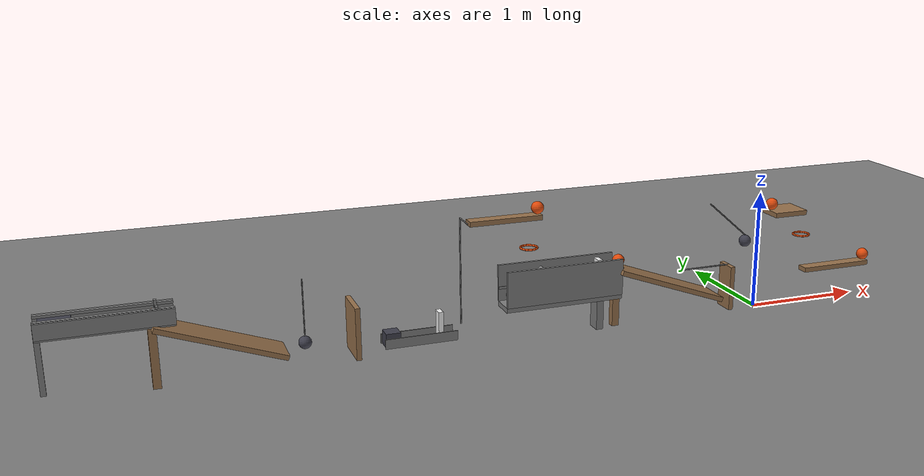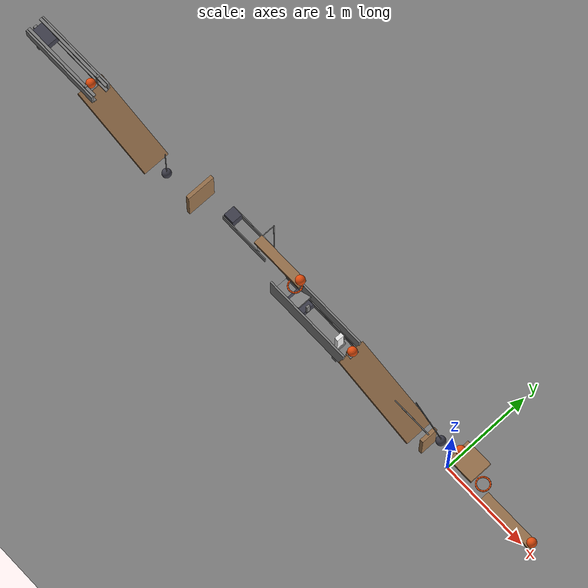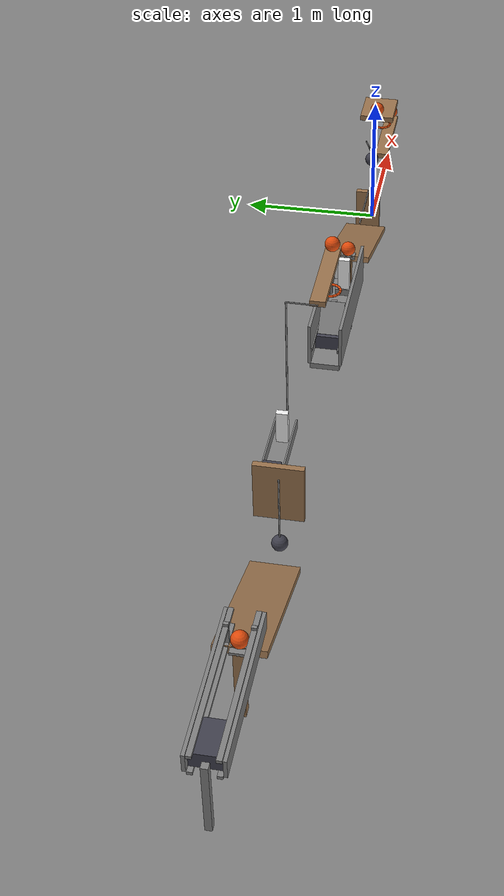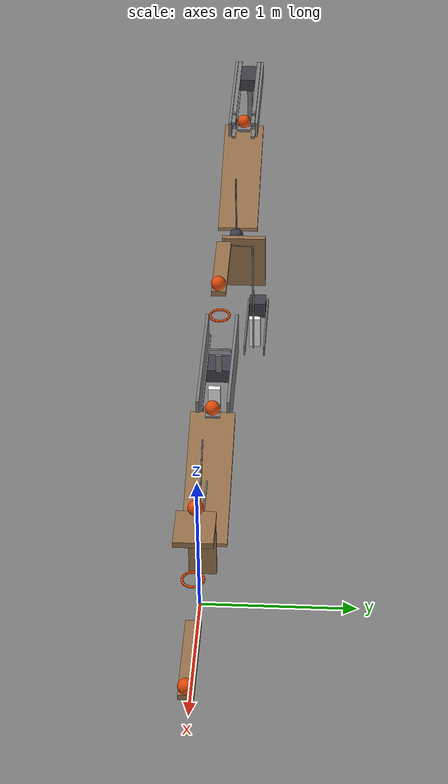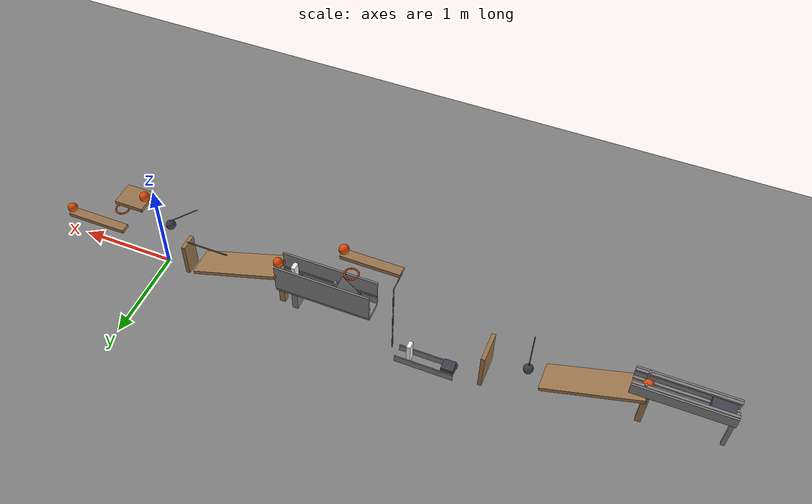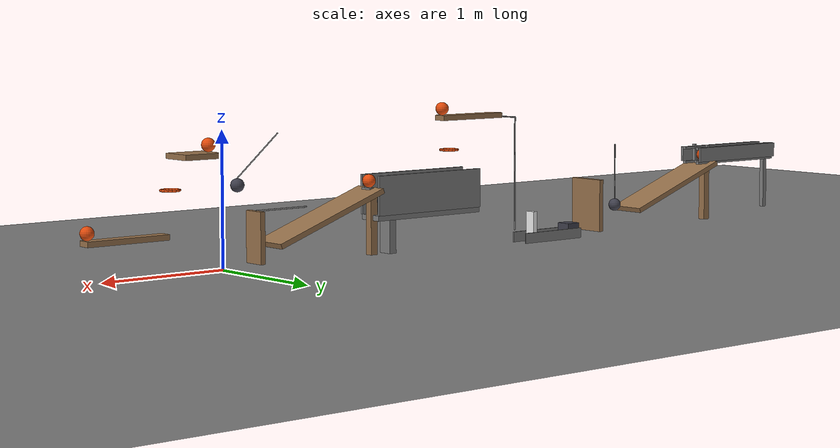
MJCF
<mujoco model="retained_cart_passive_chain_approximation">
  <compiler angle="radian"/>
  <option timestep="0.002"/>
  <worldbody>
    <geom name="floor" type="plane" size="12 12 0.1" friction="0.68 0 0"/>
    <body name="ramp1">
      <geom name="ramp1_deck" type="box" pos="-4.53015 0 0.32101" size="0.5 0.15 0.02" euler="0 0.349066 0" friction="0.68 0 0" solref="0.01 1" rgba="0.6 0.45 0.3 1"/>
      <geom name="ramp1_leg" type="box" pos="-5 0 0.24601" size="0.03 0.03 0.24601" friction="0.68 0 0" solref="0.01 1" rgba="0.6 0.45 0.3 1"/>
    </body>
    <body name="cart1 left track">
      <geom name="cart1 left track" type="box" pos="-5.30606 0.075 0.497798" size="0.475 0.015 0.01" friction="0 0 0" solref="0.01 1"/>
    </body>
    <body name="cart1 right track">
      <geom name="cart1 right track" type="box" pos="-5.30606 -0.075 0.497798" size="0.475 0.015 0.01" friction="0 0 0" solref="0.01 1"/>
    </body>
    <body name="cart1 left guide">
      <geom name="cart1 left guide" type="box" pos="-5.30606 0.103 0.567798" size="0.475 0.01 0.06" friction="0 0 0" solref="0.01 1"/>
    </body>
    <body name="cart1 right guide">
      <geom name="cart1 right guide" type="box" pos="-5.30606 -0.103 0.567798" size="0.475 0.01 0.06" friction="0 0 0" solref="0.01 1"/>
    </body>
    <body name="cart1 left retaining rail">
      <geom name="cart1 left retaining rail" type="box" pos="-5.30606 0.075 0.619798" size="0.475 0.015 0.01" friction="0 0 0" solref="0.01 1"/>
    </body>
    <body name="cart1 right retaining rail">
      <geom name="cart1 right retaining rail" type="box" pos="-5.30606 -0.075 0.619798" size="0.475 0.015 0.01" friction="0 0 0" solref="0.01 1"/>
    </body>
    <body name="cart1 left end stop">
      <geom name="cart1 left end stop" type="box" pos="-4.95606 0.075 0.577798" size="0.01 0.015 0.07" friction="0 0 0" solref="0.01 1"/>
    </body>
    <body name="cart1 right end stop">
      <geom name="cart1 right end stop" type="box" pos="-4.95606 -0.075 0.577798" size="0.01 0.015 0.07" friction="0 0 0" solref="0.01 1"/>
    </body>
    <body name="ball1 starting ledge">
      <geom name="ball1 starting ledge" type="box" pos="-4.98 0 0.497798" size="0.05 0.05 0.01" friction="0.68 0 0" solref="0.01 1"/>
    </body>
    <body name="ball1" pos="-4.97606 0 0.557798">
      <freejoint/>
      <geom name="ball1" type="sphere" pos="0 0 0" size="0.05" mass="0.2" condim="6" friction="0.68 0 0" solref="0.01 1" rgba="0.9 0.3 0.05 1"/>
    </body>
    <body name="cart1" pos="-5.63606 0 0.557798">
      <freejoint/>
      <geom name="cart1" type="box" pos="0 0 0" size="0.11 0.09 0.05" mass="0.5" friction="0 0 0" solref="0.01 1" rgba="0.25 0.25 0.3 1"/>
    </body>
    <body name="cart1 spring pusher" pos="-5.76706 0 0.057798">
      <joint name="cart1_spring_hinge" type="hinge" pos="0 0 0" axis="0 1 0" limited="true" range="0 0.4" stiffness="4.5" springref="0.4" damping="0.04" armature="0.01"/>
      <geom name="cart1 spring pusher" type="box" pos="0 0 0.25" size="0.02 0.02 0.25" mass="0.05" friction="0.68 0 0" solref="0.01 1"/>
    </body>
    <body name="pendulum1" pos="-3.91031 0 0.7">
      <joint name="pendulum1_hinge" type="hinge" pos="0 0 0" axis="0 1 0" limited="true" range="-0.698132 0" damping="0.04" armature="0.01"/>
      <geom name="pendulum1" type="sphere" pos="0 0 -0.5" size="0.05" mass="0.3" friction="0.68 0 0" solref="0.01 1" rgba="0.25 0.25 0.3 1"/>
      <geom name="pendulum1 rod" type="capsule" size="0.005" fromto="0 0 0 0 0 -0.45" mass="0.05" friction="0.68 0 0" solref="0.01 1"/>
    </body>
    <body name="door1" pos="-3.51891 0.08 0.025">
      <joint name="door1_hinge" type="hinge" pos="0 0 0" axis="0 1 0" limited="true" range="0 1.22173" damping="0.04" armature="0.01"/>
      <geom name="door1" type="box" pos="0 0 0.21" size="0.02 0.16 0.21" mass="0.45" friction="0.68 0 0" solref="0.01 1" rgba="0.6 0.45 0.3 1"/>
    </body>
    <body name="block1" pos="-3.18891 0.2 0.06">
      <freejoint/>
      <geom name="block1" type="box" pos="0 0 0" size="0.06 0.06 0.06" mass="0.35" friction="0.68 0 0" solref="0.01 1" rgba="0.25 0.25 0.3 1"/>
    </body>
    <body name="block1 left guide">
      <geom name="block1 left guide" type="box" pos="-2.95891 0.27 0.04" size="0.3 0.005 0.04" friction="0 0 0" solref="0.01 1"/>
    </body>
    <body name="block1 right guide">
      <geom name="block1 right guide" type="box" pos="-2.95891 0.13 0.04" size="0.3 0.005 0.04" friction="0 0 0" solref="0.01 1"/>
    </body>
    <body name="domino1" pos="-2.78891 0.2 0.12">
      <freejoint/>
      <geom name="domino1" type="box" pos="0 0 0" size="0.02 0.04 0.12" mass="0.25" friction="0.68 0 0" solref="0.01 1" rgba="0.95 0.95 0.95 1"/>
    </body>
    <body name="lever1" pos="-2.30891 0 1">
      <joint name="lever1_hinge" type="hinge" pos="0 0 0" axis="0 1 0" limited="true" range="-0.785398 0" damping="0.04" armature="0.01"/>
      <geom name="lever1" type="box" pos="0 0 0" size="0.3 0.05 0.02" mass="0.45" friction="0.68 0 0" solref="0.01 1" rgba="0.6 0.45 0.3 1"/>
      <geom name="lever1 trigger crossbar" type="capsule" size="0.005" fromto="-0.3 0 -0.01 -0.3 0.2 -0.01" mass="0.025" friction="0.68 0 0" solref="0.01 1"/>
      <geom name="lever1 striker" type="capsule" size="0.006" fromto="-0.3 0.2 -0.01 -0.3 0.2 -0.89" mass="0.025" friction="0.68 0 0" solref="0.01 1"/>
    </body>
    <body name="ball2" pos="-2.03391 0 1.07">
      <freejoint/>
      <geom name="ball2" type="sphere" pos="0 0 0" size="0.05" mass="0.2" condim="6" friction="0.68 0 0" solref="0.01 1" rgba="0.9 0.3 0.05 1"/>
    </body>
    <body name="ring1">
      <geom name="ring1_00" type="capsule" size="0.008" fromto="-2.03591 0 0.75 -2.04109 0.0260225 0.75" friction="0.68 0 0" solref="0.01 1" rgba="0.9 0.3 0.05 1"/>
      <geom name="ring1_01" type="capsule" size="0.008" fromto="-2.04109 0.0260225 0.75 -2.05583 0.0480833 0.75" friction="0.68 0 0" solref="0.01 1" rgba="0.9 0.3 0.05 1"/>
      <geom name="ring1_02" type="capsule" size="0.008" fromto="-2.05583 0.0480833 0.75 -2.07789 0.0628238 0.75" friction="0.68 0 0" solref="0.01 1" rgba="0.9 0.3 0.05 1"/>
      <geom name="ring1_03" type="capsule" size="0.008" fromto="-2.07789 0.0628238 0.75 -2.10391 0.068 0.75" friction="0.68 0 0" solref="0.01 1" rgba="0.9 0.3 0.05 1"/>
      <geom name="ring1_04" type="capsule" size="0.008" fromto="-2.10391 0.068 0.75 -2.12994 0.0628238 0.75" friction="0.68 0 0" solref="0.01 1" rgba="0.9 0.3 0.05 1"/>
      <geom name="ring1_05" type="capsule" size="0.008" fromto="-2.12994 0.0628238 0.75 -2.152 0.0480833 0.75" friction="0.68 0 0" solref="0.01 1" rgba="0.9 0.3 0.05 1"/>
      <geom name="ring1_06" type="capsule" size="0.008" fromto="-2.152 0.0480833 0.75 -2.16674 0.0260225 0.75" friction="0.68 0 0" solref="0.01 1" rgba="0.9 0.3 0.05 1"/>
      <geom name="ring1_07" type="capsule" size="0.008" fromto="-2.16674 0.0260225 0.75 -2.17191 8.3276e-18 0.75" friction="0.68 0 0" solref="0.01 1" rgba="0.9 0.3 0.05 1"/>
      <geom name="ring1_08" type="capsule" size="0.008" fromto="-2.17191 8.3276e-18 0.75 -2.16674 -0.0260225 0.75" friction="0.68 0 0" solref="0.01 1" rgba="0.9 0.3 0.05 1"/>
      <geom name="ring1_09" type="capsule" size="0.008" fromto="-2.16674 -0.0260225 0.75 -2.152 -0.0480833 0.75" friction="0.68 0 0" solref="0.01 1" rgba="0.9 0.3 0.05 1"/>
      <geom name="ring1_10" type="capsule" size="0.008" fromto="-2.152 -0.0480833 0.75 -2.12994 -0.0628238 0.75" friction="0.68 0 0" solref="0.01 1" rgba="0.9 0.3 0.05 1"/>
      <geom name="ring1_11" type="capsule" size="0.008" fromto="-2.12994 -0.0628238 0.75 -2.10391 -0.068 0.75" friction="0.68 0 0" solref="0.01 1" rgba="0.9 0.3 0.05 1"/>
      <geom name="ring1_12" type="capsule" size="0.008" fromto="-2.10391 -0.068 0.75 -2.07789 -0.0628238 0.75" friction="0.68 0 0" solref="0.01 1" rgba="0.9 0.3 0.05 1"/>
      <geom name="ring1_13" type="capsule" size="0.008" fromto="-2.07789 -0.0628238 0.75 -2.05583 -0.0480833 0.75" friction="0.68 0 0" solref="0.01 1" rgba="0.9 0.3 0.05 1"/>
      <geom name="ring1_14" type="capsule" size="0.008" fromto="-2.05583 -0.0480833 0.75 -2.04109 -0.0260225 0.75" friction="0.68 0 0" solref="0.01 1" rgba="0.9 0.3 0.05 1"/>
      <geom name="ring1_15" type="capsule" size="0.008" fromto="-2.04109 -0.0260225 0.75 -2.03591 -1.66552e-17 0.75" friction="0.68 0 0" solref="0.01 1" rgba="0.9 0.3 0.05 1"/>
    </body>
    <body name="cart2 track">
      <geom name="cart2 track" type="box" pos="-1.82613 0 0.28" size="0.5 0.1 0.02" friction="0 0 0" solref="0.01 1"/>
    </body>
    <body name="cart2 left guide">
      <geom name="cart2 left guide" type="box" pos="-1.82613 0.103 0.45" size="0.5 0.01 0.15" friction="0 0 0" solref="0.01 1"/>
    </body>
    <body name="cart2 right guide">
      <geom name="cart2 right guide" type="box" pos="-1.82613 -0.103 0.45" size="0.5 0.01 0.15" friction="0 0 0" solref="0.01 1"/>
    </body>
    <body name="cart2 left retaining rail">
      <geom name="cart2 left retaining rail" type="box" pos="-1.82613 0.086 0.412" size="0.5 0.004 0.01" friction="0 0 0" solref="0.01 1"/>
    </body>
    <body name="cart2 right retaining rail">
      <geom name="cart2 right retaining rail" type="box" pos="-1.82613 -0.086 0.412" size="0.5 0.004 0.01" friction="0 0 0" solref="0.01 1"/>
    </body>
    <body name="cart2 left end stop">
      <geom name="cart2 left end stop" type="box" pos="-1.51613 0.086 0.36" size="0.01 0.007 0.06" friction="0 0 0" solref="0.01 1"/>
    </body>
    <body name="cart2 right end stop">
      <geom name="cart2 right end stop" type="box" pos="-1.51613 -0.086 0.36" size="0.01 0.007 0.06" friction="0 0 0" solref="0.01 1"/>
    </body>
    <body name="cart2" pos="-2.04613 0 0.35">
      <freejoint/>
      <geom name="cart2" type="box" pos="0 0 0" size="0.11 0.09 0.05" mass="0.35" friction="0 0 0" solref="0.01 1" rgba="0.25 0.25 0.3 1"/>
      <geom name="cart2 receiver" type="box" pos="0 0 0.13" size="0.113137 0.08 0.005" euler="0 -0.785398 0" mass="0.1" friction="0.68 0 0" solref="0.01 1"/>
      <geom name="cart2 front bumper" type="box" pos="0.12 0 0.12" size="0.01 0.02 0.07" mass="0.05" friction="0.68 0 0" solref="0.01 1"/>
    </body>
    <body name="domino2 pedestal">
      <geom name="domino2 pedestal" type="box" pos="-1.49613 0 0.175" size="0.03 0.06 0.175" friction="0.68 0 0" solref="0.01 1"/>
    </body>
    <body name="domino2" pos="-1.49613 0 0.47">
      <freejoint/>
      <geom name="domino2" type="box" pos="0 0 0" size="0.02 0.04 0.12" mass="0.25" friction="0.68 0 0" solref="0.01 1" rgba="0.95 0.95 0.95 1"/>
    </body>
    <body name="ramp2">
      <geom name="ramp2_deck" type="box" pos="-0.870225 0 0.32101" size="0.5 0.15 0.02" euler="0 0.349066 0" friction="0.68 0 0" solref="0.01 1" rgba="0.6 0.45 0.3 1"/>
      <geom name="ramp2_leg" type="box" pos="-1.34007 0 0.24601" size="0.03 0.03 0.24601" friction="0.68 0 0" solref="0.01 1" rgba="0.6 0.45 0.3 1"/>
    </body>
    <body name="ball3 starting ledge">
      <geom name="ball3 starting ledge" type="box" pos="-1.31613 0 0.497798" size="0.03 0.05 0.01" friction="0.68 0 0" solref="0.01 1"/>
    </body>
    <body name="ball3" pos="-1.31613 0 0.557798">
      <freejoint/>
      <geom name="ball3" type="sphere" pos="0 0 0" size="0.05" mass="0.2" condim="6" friction="0.68 0 0" solref="0.01 1" rgba="0.9 0.3 0.05 1"/>
    </body>
    <body name="flap1" pos="-0.280379 0 0.025">
      <joint name="flap1_hinge" type="hinge" pos="0 0 0" axis="0 1 0" limited="true" range="0 1.0472" damping="0.04" armature="0.01"/>
      <geom name="flap1" type="box" pos="0 0 0.19" size="0.02 0.09 0.19" mass="0.23" friction="0.68 0 0" solref="0.01 1" rgba="0.6 0.45 0.3 1"/>
      <geom name="flap1 striker" type="capsule" size="0.006" fromto="0 0 0.38 -0.45 0 0.38" mass="0.05" friction="0.68 0 0" solref="0.01 1"/>
    </body>
    <body name="pendulum2" pos="-0.479932 0 0.953553">
      <joint name="pendulum2_hinge" type="hinge" pos="0 0 0" axis="0 1 0" limited="true" range="-0.663225 0" damping="0.04" armature="0.01"/>
      <geom name="pendulum2" type="sphere" pos="0.353553 0 -0.353553" size="0.05" mass="0.3" friction="0.68 0 0" solref="0.01 1" rgba="0.25 0.25 0.3 1"/>
      <geom name="pendulum2 rod" type="capsule" size="0.005" fromto="0 0 0 0.353553 0 -0.303553" mass="0.05" friction="0.68 0 0" solref="0.01 1"/>
    </body>
    <body name="shelf1">
      <geom name="shelf1" type="box" pos="0.236021 0 0.83" size="0.15 0.125 0.02" friction="0.68 0 0" solref="0.01 1" rgba="0.6 0.45 0.3 1"/>
    </body>
    <body name="ball4" pos="0.116021 0 0.9">
      <freejoint/>
      <geom name="ball4" type="sphere" pos="0 0 0" size="0.05" mass="0.2" condim="6" friction="0.68 0 0" solref="0.01 1" rgba="0.9 0.3 0.05 1"/>
    </body>
    <body name="ring2">
      <geom name="ring2_00" type="capsule" size="0.008" fromto="0.504021 0 0.6 0.498845 0.0260225 0.6" friction="0.68 0 0" solref="0.01 1" rgba="0.9 0.3 0.05 1"/>
      <geom name="ring2_01" type="capsule" size="0.008" fromto="0.498845 0.0260225 0.6 0.484104 0.0480833 0.6" friction="0.68 0 0" solref="0.01 1" rgba="0.9 0.3 0.05 1"/>
      <geom name="ring2_02" type="capsule" size="0.008" fromto="0.484104 0.0480833 0.6 0.462043 0.0628238 0.6" friction="0.68 0 0" solref="0.01 1" rgba="0.9 0.3 0.05 1"/>
      <geom name="ring2_03" type="capsule" size="0.008" fromto="0.462043 0.0628238 0.6 0.436021 0.068 0.6" friction="0.68 0 0" solref="0.01 1" rgba="0.9 0.3 0.05 1"/>
      <geom name="ring2_04" type="capsule" size="0.008" fromto="0.436021 0.068 0.6 0.409999 0.0628238 0.6" friction="0.68 0 0" solref="0.01 1" rgba="0.9 0.3 0.05 1"/>
      <geom name="ring2_05" type="capsule" size="0.008" fromto="0.409999 0.0628238 0.6 0.387938 0.0480833 0.6" friction="0.68 0 0" solref="0.01 1" rgba="0.9 0.3 0.05 1"/>
      <geom name="ring2_06" type="capsule" size="0.008" fromto="0.387938 0.0480833 0.6 0.373197 0.0260225 0.6" friction="0.68 0 0" solref="0.01 1" rgba="0.9 0.3 0.05 1"/>
      <geom name="ring2_07" type="capsule" size="0.008" fromto="0.373197 0.0260225 0.6 0.368021 8.3276e-18 0.6" friction="0.68 0 0" solref="0.01 1" rgba="0.9 0.3 0.05 1"/>
      <geom name="ring2_08" type="capsule" size="0.008" fromto="0.368021 8.3276e-18 0.6 0.373197 -0.0260225 0.6" friction="0.68 0 0" solref="0.01 1" rgba="0.9 0.3 0.05 1"/>
      <geom name="ring2_09" type="capsule" size="0.008" fromto="0.373197 -0.0260225 0.6 0.387938 -0.0480833 0.6" friction="0.68 0 0" solref="0.01 1" rgba="0.9 0.3 0.05 1"/>
      <geom name="ring2_10" type="capsule" size="0.008" fromto="0.387938 -0.0480833 0.6 0.409999 -0.0628238 0.6" friction="0.68 0 0" solref="0.01 1" rgba="0.9 0.3 0.05 1"/>
      <geom name="ring2_11" type="capsule" size="0.008" fromto="0.409999 -0.0628238 0.6 0.436021 -0.068 0.6" friction="0.68 0 0" solref="0.01 1" rgba="0.9 0.3 0.05 1"/>
      <geom name="ring2_12" type="capsule" size="0.008" fromto="0.436021 -0.068 0.6 0.462043 -0.0628238 0.6" friction="0.68 0 0" solref="0.01 1" rgba="0.9 0.3 0.05 1"/>
      <geom name="ring2_13" type="capsule" size="0.008" fromto="0.462043 -0.0628238 0.6 0.484104 -0.0480833 0.6" friction="0.68 0 0" solref="0.01 1" rgba="0.9 0.3 0.05 1"/>
      <geom name="ring2_14" type="capsule" size="0.008" fromto="0.484104 -0.0480833 0.6 0.498845 -0.0260225 0.6" friction="0.68 0 0" solref="0.01 1" rgba="0.9 0.3 0.05 1"/>
      <geom name="ring2_15" type="capsule" size="0.008" fromto="0.498845 -0.0260225 0.6 0.504021 -1.66552e-17 0.6" friction="0.68 0 0" solref="0.01 1" rgba="0.9 0.3 0.05 1"/>
    </body>
    <body name="seesaw1" pos="0.801021 0 0.28">
      <joint name="seesaw1_hinge" type="hinge" pos="0 0 0" axis="0 1 0" limited="true" range="-0.733038 0" damping="0.04" armature="0.01"/>
      <geom name="seesaw1" type="box" pos="0 0 0" size="0.325 0.05 0.02" mass="0.55" friction="0.68 0 0" solref="0.01 1" rgba="0.6 0.45 0.3 1"/>
    </body>
    <body name="ball5" pos="1.10102 0 0.35">
      <freejoint/>
      <geom name="ball5" type="sphere" pos="0 0 0" size="0.05" mass="0.2" condim="6" friction="0.68 0 0" solref="0.01 1" rgba="0.9 0.3 0.05 1"/>
    </body>
  </worldbody>
  <keyframe>
    <key name="start" qpos="-4.97606 0 0.557798 1 0 0 0 -5.63606 0 0.557798 1 0 0 0 0 0 0 -3.18891 0.2 0.06 1 0 0 0 -2.78891 0.2 0.12 1 0 0 0 0 -2.03391 0 1.07 1 0 0 0 -2.04613 0 0.35 1 0 0 0 -1.49613 0 0.47 1 0 0 0 -1.31613 0 0.557798 1 0 0 0 0 0 0.116021 0 0.9 1 0 0 0 0 1.10102 0 0.35 1 0 0 0" qvel="0 0 0 0 0 0 0 0 0 0 0 0 0 0 0 0 0 0 0 0 0 0 0 0 0 0 0 0 0 0 0 0 0 0 0 0 0 0 0 0 0 0 0 0 0 0 0 0 0 0 0 0 0 0 0 0 0 0 0 0 0 0 0 0 0 0 0"/>
  </keyframe>
</mujoco>
